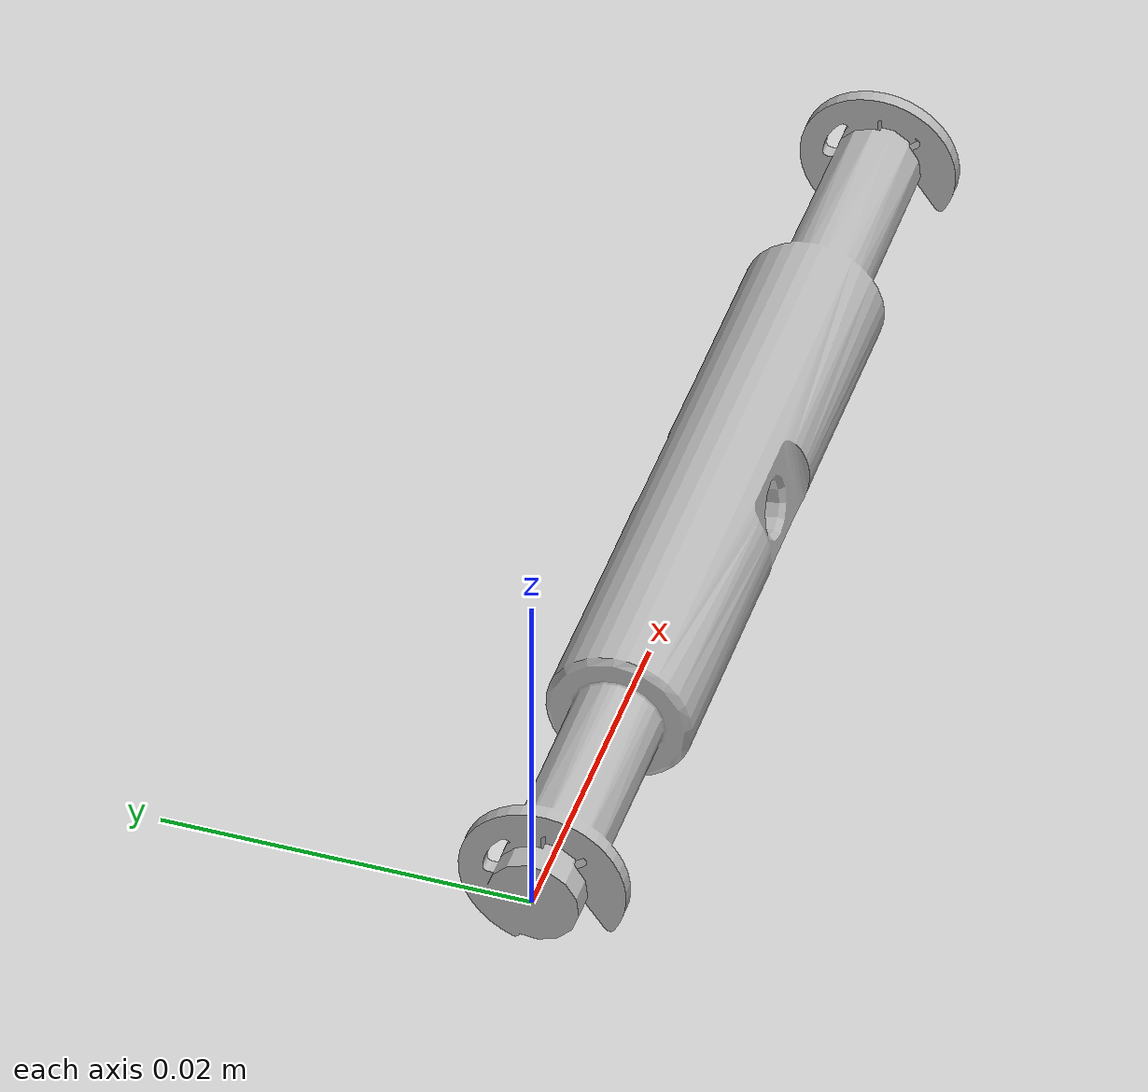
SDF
<?xml version="1.0" ?>
<sdf version="1.5">
  <model name="delta_test">
    <link name='delta_test'>
      <inertial>
        <pose>0 -0 0.009282 0 -0 0</pose>
        <mass>0.0277053</mass>
        <inertia>
          <ixx>7.21837e-06</ixx>
          <ixy>8.45348e-15</ixy>
          <ixz>4.72158e-13</ixz>
          <iyy>7.21837e-06</iyy>
          <iyz>2.82195e-12</iyz>
          <izz>1.36261e-05</izz>
        </inertia>
      </inertial>
      <collision name='delta_test_collision'>
        <pose>0 0 0 0 -0 0</pose>
        <geometry>
          <mesh>
            <scale>1 1 1</scale>
            <uri>model://delta_test/meshes/con101.STL</uri>
          </mesh>
        </geometry>
      </collision>
      <visual name='delta_test_visual'>
        <pose>0 0 0 0 -0 0</pose>
        <geometry>
          <mesh>
            <scale>1 1 1</scale>
            <uri>model://delta_test/meshes/con101.STL</uri>
          </mesh>
        </geometry>
      </visual>
    </link>
  </model>
</sdf>
